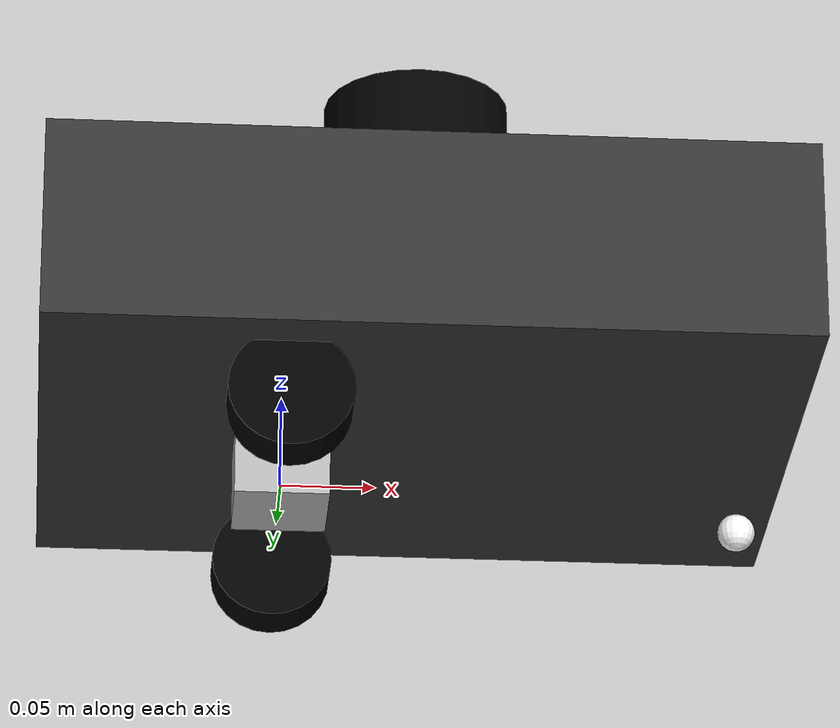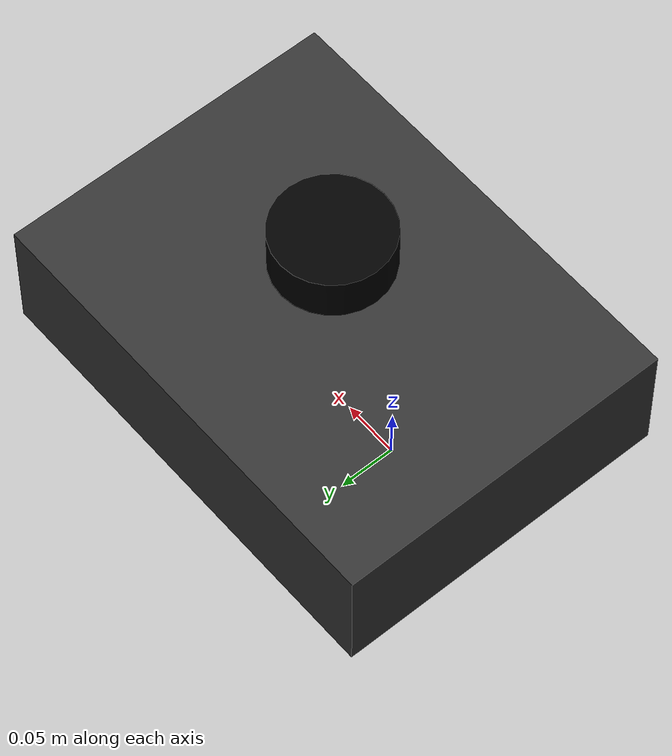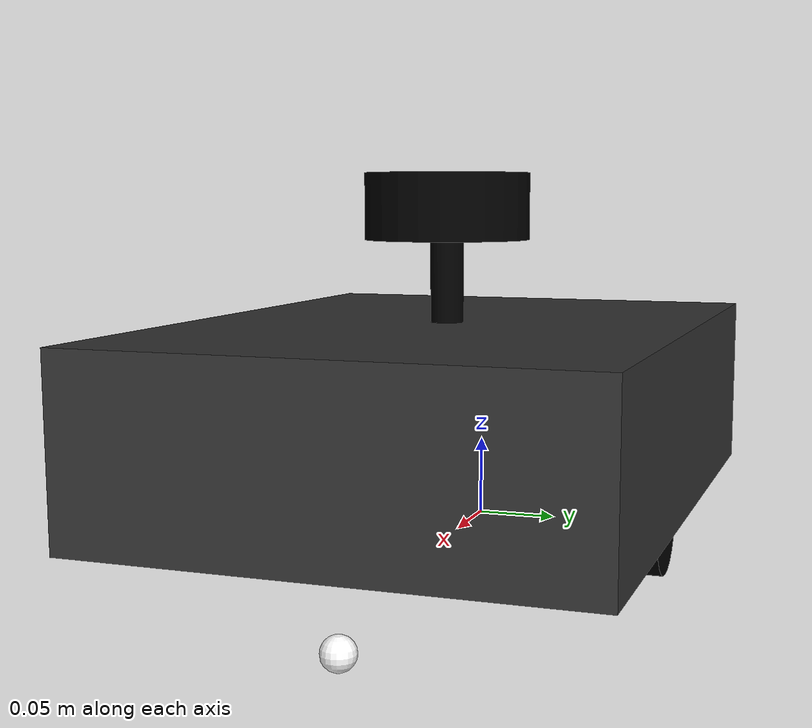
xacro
<?xml version="1.0"?>
<robot xmlns:xacro="http://www.ros.org/wiki/xacro"  name="robot">

    <xacro:arg name="use_ros2_control" default="true"/>
    <xacro:arg name="sim_mode" default="true"/>

    <xacro:include filename="robot_core.xacro" />
    <xacro:include filename="lidar.xacro" />
    <xacro:include filename="imu.xacro" />

    <xacro:if value="$(arg use_ros2_control)">
        <xacro:include filename="ros2_control.xacro" />
    </xacro:if>
    <xacro:unless value="$(arg use_ros2_control)">
        <xacro:include filename="gazebo_control.xacro" />
    </xacro:unless>

</robot>

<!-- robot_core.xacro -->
<robot xmlns:xacro="http://www.ros.org/wiki/xacro" >

    <xacro:include filename="inertial_macros.xacro"/>

    <xacro:property name="chassis_length" value="0.40"/>
    <xacro:property name="chassis_width" value="0.30"/>
    <xacro:property name="chassis_height" value="0.11"/>
    <xacro:property name="chassis_mass" value="2.0"/>
    <xacro:property name="wheel_radius" value="0.0325"/>
    <xacro:property name="wheel_thickness" value="0.027"/>
    <xacro:property name="wheel_mass" value="0.037"/>
    <xacro:property name="wheel_offset_x" value="0.1285"/>
    <xacro:property name="wheel_offset_y" value="0.112"/>
    <xacro:property name="wheel_offset_z" value="-0.025"/>
    <xacro:property name="caster_wheel_radius" value="0.01"/>
    <xacro:property name="caster_wheel_mass" value="0.01"/>
    <xacro:property name="caster_wheel_offset_x" value="0.370"/>
    <xacro:property name="caster_wheel_offset_z" value="-0.045"/>

    <material name="white">
        <color rgba="1 1 1 1" />
    </material>

    <material name="orange">
        <color rgba="1 0.3 0.1 1"/>
    </material>

    <material name="blue">
        <color rgba="0.2 0.2 1 1"/>
    </material>

    <material name="black">
        <color rgba="0 0 0 1"/>
    </material>

    <material name="red">
        <color rgba="1 0 0 1"/>
    </material>

    <material name="light_black">
    <color rgba="0.2 0.2 0.2 1"/>
    </material>

    <!-- BASE LINK -->

    <link name="base_link">

    </link>

    <!-- BASE_FOOTPRINT LINK -->

    <joint name="base_footprint_joint" type="fixed">
        <parent link="base_link"/>
        <child link="base_footprint"/>
        <origin xyz="0 0 0" rpy="0 0 0"/>
    </joint>

    <link name="base_footprint">
    </link>

    <!-- CHASSIS LINK -->

    <joint name="chassis_joint" type="fixed">
        <parent link="base_link"/>
        <child link="chassis"/>
        <origin xyz="${-wheel_offset_x} 0 ${-wheel_offset_z}"/>
    </joint>

    <link name="chassis">
        <visual>
            <origin xyz="${chassis_length/2} 0 ${chassis_height/2}"/>
            <geometry>
                <box size="${chassis_length} ${chassis_width} ${chassis_height}"/>
            </geometry>
            <material name="light_black"/>
        </visual>
        <collision>
            <origin xyz="${chassis_length/2} 0 ${chassis_height/2}"/>
            <geometry>
                <box size="${chassis_length} ${chassis_width} ${chassis_height}"/>
            </geometry>
        </collision>
        <xacro:inertial_box mass="0.5" x="${chassis_length}" y="${chassis_width}" z="${chassis_height}">
            <origin xyz="${chassis_length/2} 0 ${chassis_height/2}" rpy="0 0 0"/>
        </xacro:inertial_box>
    </link>

    <gazebo reference="chassis">
        <material>Gazebo/Grey</material>
    </gazebo>

    <!-- LEFT WHEEL LINK -->

    <joint name="left_wheel_joint" type="continuous">
        <parent link="base_link"/>
        <child link="left_wheel"/>
        <origin xyz="0 ${wheel_offset_y} 0" rpy="-${pi/2} 0 0" />
        <axis xyz="0 0 1"/>
    </joint>

    <link name="left_wheel">
        <visual>
            <geometry>
                <cylinder radius="${wheel_radius}" length="${wheel_thickness}"/>
            </geometry>
            <material name="black"/>
        </visual>
        <collision>
            <geometry>
                <sphere radius="${wheel_radius}"/>
            </geometry>
        </collision>
        <xacro:inertial_cylinder mass="${wheel_mass}" length="${wheel_thickness}" radius="${wheel_radius}">
            <origin xyz="0 0 0" rpy="0 0 0"/>
        </xacro:inertial_cylinder>
    </link>

    <gazebo reference="left_wheel">
        <material>Gazebo/Black</material>
    </gazebo>

    <!-- RIGHT WHEEL LINK -->

    <joint name="right_wheel_joint" type="continuous">
        <parent link="base_link"/>
        <child link="right_wheel"/>
        <origin xyz="0 ${-wheel_offset_y} 0" rpy="${pi/2} 0 0" />
        <axis xyz="0 0 -1"/>
    </joint>

    <link name="right_wheel">
        <visual>
            <geometry>
                <cylinder radius="${wheel_radius}" length="${wheel_thickness}"/>
            </geometry>
            <material name="black"/>
        </visual>
        <collision>
            <geometry>
                <sphere radius="${wheel_radius}"/>
            </geometry>
        </collision>
        <xacro:inertial_cylinder mass="${wheel_mass}" length="${wheel_thickness}" radius="${wheel_radius}">
            <origin xyz="0 0 0" rpy="0 0 0"/>
        </xacro:inertial_cylinder>
    </link>

    <gazebo reference="right_wheel">
        <material>Gazebo/Black</material>
    </gazebo>

    <!-- CASTER WHEEL LINK -->

    <joint name="caster_wheel_joint" type="fixed">
        <parent link="chassis"/>
        <child link="caster_wheel"/>
        <origin xyz="${caster_wheel_offset_x} 0 ${caster_wheel_offset_z}"/>
    </joint>

    <link name="caster_wheel">
        <visual>
            <geometry>
                <sphere radius="${caster_wheel_radius}"/>
            </geometry>
            <material name="white"/>
        </visual>
        <collision>
            <geometry>
                <sphere radius="${caster_wheel_radius}"/>
            </geometry>
        </collision>
        <xacro:inertial_sphere mass="${caster_wheel_mass}" radius="${caster_wheel_radius}">
            <origin xyz="0 0 0" rpy="0 0 0"/>
        </xacro:inertial_sphere>
    </link>

    <gazebo reference="caster_wheel">
        <material>Gazebo/White</material>
        <mu1 value="0.001"/>
        <mu2 value="0.001"/>
    </gazebo>

</robot>

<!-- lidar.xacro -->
<robot xmlns:xacro="http://www.ros.org/wiki/xacro">

    <joint name="laser_joint" type="fixed">
        <parent link="chassis"/>
        <child link="laser_frame"/>
        <origin xyz="0.2 0 0.18" rpy="0 0 0"/>
    </joint>

    <link name="laser_frame">
        <visual>
            <geometry>
                <cylinder radius="0.05" length="0.04"/>
            </geometry>
            <material name="black"/>
        </visual>
        <visual>
            <origin xyz="0 0 -0.05"/>
            <geometry>
                <cylinder radius="0.01" length="0.1"/>
            </geometry>
            <material name="black"/>
        </visual>
        <collision>
            <geometry>
                <cylinder radius="0.05" length="0.04"/>
            </geometry>
        </collision>
        <xacro:inertial_cylinder mass="0.1" length="0.04" radius="0.05">
            <origin xyz="0 0 0" rpy="0 0 0"/>
        </xacro:inertial_cylinder>
    </link>

    <gazebo reference="laser_frame">
        <material>Gazebo/Black</material>

        <sensor name="laser" type="gpu_lidar">
            <pose>0 0 0 0 0 0</pose>
            <visualize>false</visualize>
            <update_rate>100</update_rate>
            <topic>/scan</topic>
            <gz_frame_id>laser_frame</gz_frame_id>
            <lidar>
                <scan>
                    <horizontal>
                        <samples>360</samples>
                        <min_angle>-3.14</min_angle>
                        <max_angle>3.14</max_angle>
                    </horizontal>
                </scan>
                <range>
                    <min>0.3</min>
                    <max>12</max>
                </range>
            </lidar>
        </sensor>
    </gazebo>

</robot>

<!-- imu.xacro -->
<robot xmlns:xacro="http://www.ros.org/wiki/xacro">
<link name="imu_link">
    <visual>
        <geometry>
            <box size="0.05 0.05 0.05"/>
        </geometry>
    </visual>
    <collision>
        <geometry>
            <box size="0.05 0.05 0.05"/>
        </geometry>
    </collision>
    <xacro:inertial_box mass="1.0" x="0.05" y="0.05" z="0.05">
        <origin xyz="0 0 0" rpy="0 0 0"/>
    </xacro:inertial_box>
</link>

<joint name="imu_joint" type="fixed">
    <parent link="base_link"/>
    <child link="imu_link"/>
    <origin xyz="0 0 0.01" rpy="0 0 0"/>
</joint>

    <gazebo reference="imu_link">
        <sensor name="imu_sensor" type="imu">
            <plugin filename="libgazebo_ros_imu_sensor.so" name="imu_plugin">
                <ros>
                    <remapping>~/out:=imu</remapping>
                </ros>
                <initial_orientation_as_reference>false</initial_orientation_as_reference>
            </plugin>
            <always_on>true</always_on>
            <update_rate>100</update_rate>
            <visualize>true</visualize>
            <imu>
                <angular_velocity>
                    <x>
                        <noise type="gaussian">
                            <mean>0.0</mean>
                            <stddev>2e-4</stddev>
                            <bias_mean>0.0000075</bias_mean>
                            <bias_stddev>0.0000008</bias_stddev>
                        </noise>
                    </x>
                    <y>
                        <noise type="gaussian">
                            <mean>0.0</mean>
                            <stddev>2e-4</stddev>
                            <bias_mean>0.0000075</bias_mean>
                            <bias_stddev>0.0000008</bias_stddev>
                        </noise>
                    </y>
                    <z>
                        <noise type="gaussian">
                            <mean>0.0</mean>
                            <stddev>2e-4</stddev>
                            <bias_mean>0.0000075</bias_mean>
                            <bias_stddev>0.0000008</bias_stddev>
                        </noise>
                    </z>
                </angular_velocity>
                <linear_acceleration>
                    <x>
                        <noise type="gaussian">
                            <mean>0.0</mean>
                            <stddev>1.7e-2</stddev>
                            <bias_mean>0.1</bias_mean>
                            <bias_stddev>0.001</bias_stddev>
                        </noise>
                    </x>
                    <y>
                        <noise type="gaussian">
                            <mean>0.0</mean>
                            <stddev>1.7e-2</stddev>
                            <bias_mean>0.1</bias_mean>
                            <bias_stddev>0.001</bias_stddev>
                        </noise>
                    </y>
                    <z>
                        <noise type="gaussian">
                            <mean>0.0</mean>
                            <stddev>1.7e-2</stddev>
                            <bias_mean>0.1</bias_mean>
                            <bias_stddev>0.001</bias_stddev>
                        </noise>
                    </z>
                </linear_acceleration>
            </imu>
        </sensor>
    </gazebo>

</robot>
